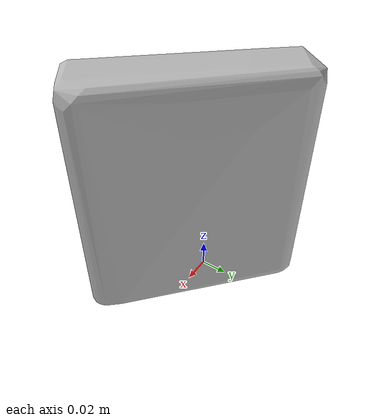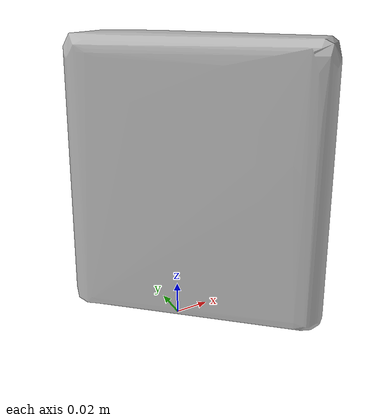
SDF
<?xml version='1.0'?>
<sdf version="1.4">
  <model name="quaker_chewy_peanut_butter_chocolate_chip">
    <static>false</static>
    <link name="link">
      <inertial>
        <pose>0.01512425341935378 -0.00035915337585109663 0.08462166209639507 3.116275471734388 -0.013862137263907446 -2.329451554825405</pose>
        <mass>0.11921498606606619</mass>
        <inertia>
          <ixx>0.00048462027796147123</ixx>
          <ixy>2.0871170087024702e-19</ixy>
          <ixz>3.1646435110623374e-22</ixz>
          <iyy>0.00028482936082357903</iyy>
          <iyz>7.69291865533308e-22</iyz>
          <izz>0.00024589696879654755</izz>
        </inertia>
      </inertial>
      <collision name="collision">
        <geometry>
          <mesh>
            <!-- Use a downsampled mesh for collisions -->
            <uri>model:///quaker_chewy_peanut_butter_chocolate_chip/quaker_chewy_peanut_butter_chocolate_chip_250_collision.obj</uri>
	        </mesh>
        </geometry>
        <surface>
      </surface>
      </collision>
      <visual name="visual">
        <geometry>
          <mesh>
            <uri>model:///quaker_chewy_peanut_butter_chocolate_chip/optimized_tsdf_texture_mapped_mesh.obj</uri>
	        </mesh>
        </geometry>
        <material>
          <script>
            <uri>model:///quaker_chewy_peanut_butter_chocolate_chip/quaker_chewy_peanut_butter_chocolate_chip.material</uri>
            <name>quaker_chewy_peanut_butter_chocolate_chip</name>
          </script>
        </material>
      </visual>
    </link>
  </model>
</sdf>
